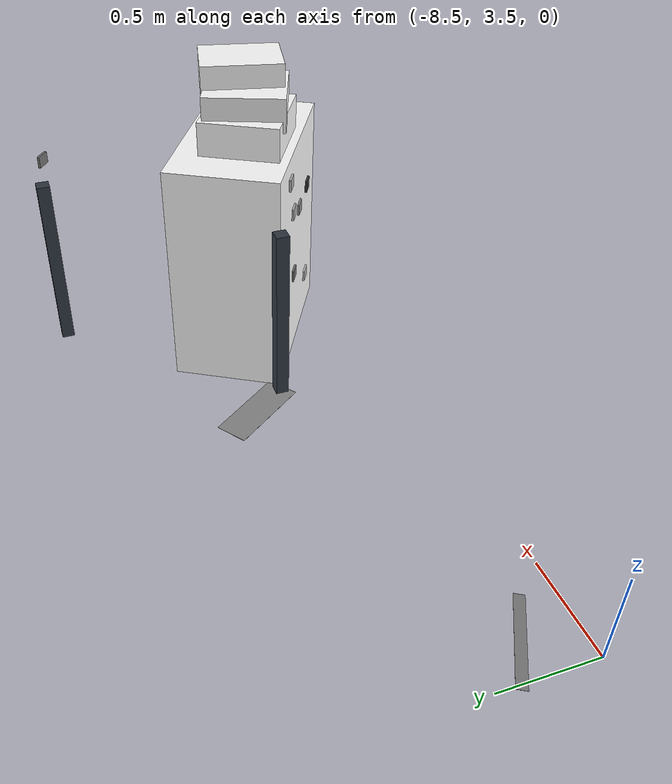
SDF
<sdf version="1.9">
 <world name="warehouse_irregular">
  <model name="concrete_patch_137">
   <static>true</static>
   <pose>-6.617455423422713 4.371536349869171 0.0006 0 0 -0.9474743150604317</pose>
   <link name="body">
    <visual name="surface">
     <geometry><box><size>0.4725333834413474 0.17494251966283283 0.001</size></box></geometry>
     <material>
      <ambient>0.524759388889908 0.524759388889908 0.524759388889908 1</ambient>
      <diffuse>0.524759388889908 0.524759388889908 0.524759388889908 1</diffuse>
     </material>
    </visual>
   </link>
  </model>
  <model name="concrete_patch_177">
   <static>true</static>
   <pose>-5.77723592558409 4.469726148606565 0.0006 0 0 0.8258014679860444</pose>
   <link name="body">
    <visual name="surface">
     <geometry><box><size>0.2825670112457129 0.161299946888635 0.001</size></box></geometry>
     <material>
      <ambient>0.5292002003037873 0.5292002003037873 0.5292002003037873 1</ambient>
      <diffuse>0.5292002003037873 0.5292002003037873 0.5292002003037873 1</diffuse>
     </material>
    </visual>
   </link>
  </model>
  <model name="concrete_patch_214">
   <static>true</static>
   <pose>-8.319689366881114 3.7755373463310598 0.0006 0 0 -0.516862153651604</pose>
   <link name="body">
    <visual name="surface">
     <geometry><box><size>0.4597193447306423 0.05258201737274962 0.001</size></box></geometry>
     <material>
      <ambient>0.4786931742407897 0.4786931742407897 0.4786931742407897 1</ambient>
      <diffuse>0.4786931742407897 0.4786931742407897 0.4786931742407897 1</diffuse>
     </material>
    </visual>
   </link>
  </model>
  <model name="panel_15_4_-1">
   <static>true</static>
   <pose>-5.438177042636795 5.217227586772431 1.0733444303970017 0 0 -0.6431714918098094</pose>
   <link name="body">
    <visual name="surface">
     <geometry><box><size>0.08 0.012 0.065</size></box></geometry>
     <material>
      <ambient>0.45648260429960896 0.45648260429960896 0.45648260429960896 1</ambient>
      <diffuse>0.45648260429960896 0.45648260429960896 0.45648260429960896 1</diffuse>
     </material>
    </visual>
   </link>
  </model>
  <model name="post_15_-1">
   <static>true</static>
   <pose>-5.590123425371991 5.247584168427819 0.5 0 0 0</pose>
   <link name="body">
    <visual name="surface">
     <geometry><box><size>0.07 0.07 1</size></box></geometry>
     <material><ambient>0.18 0.21 0.25 1</ambient><diffuse>0.18 0.21 0.25 1</diffuse></material>
    </visual>
    <collision name="solid"><geometry><box><size>0.07 0.07 1</size></box></geometry></collision>
   </link>
  </model>
  <model name="cabinet_17">
   <static>true</static>
   <pose>-5.873696568734362 4.198600738095938 0.6283083651654534 0 0 -0.5222800066137746</pose>
   <link name="body">
    <visual name="surface">
     <geometry><box><size>1 0.6 1.2566167303309068</size></box></geometry>
     <material>
      <ambient>1 1 1 1</ambient>
      <diffuse>1 1 1 1</diffuse>
      <pbr>
       <metal>
        <albedo_map>model://feature_warehouse_materials/textures/storage_17.png</albedo_map>
        <roughness>.9</roughness>
        <metalness>0</metalness>
       </metal>
      </pbr>
     </material>
    </visual>
    <collision name="solid"><geometry><box><size>1 0.6 1.2566167303309068</size></box></geometry></collision>
   </link>
  </model>
  <model name="panel_17_0_-1">
   <static>true</static>
   <pose>-6.2290220228476105 4.051207645693579 1.1258619134853676 0 0 -0.5222800066137746</pose>
   <link name="body">
    <visual name="surface">
     <geometry><box><size>0.08 0.012 0.065</size></box></geometry>
     <material>
      <ambient>0.7021941779531543 0.7021941779531543 0.7021941779531543 1</ambient>
      <diffuse>0.7021941779531543 0.7021941779531543 0.7021941779531543 1</diffuse>
     </material>
    </visual>
   </link>
  </model>
  <model name="panel_17_0_1">
   <static>true</static>
   <pose>-5.924718961206075 4.579884907050249 1.1258619134853676 0 0 -0.5222800066137746</pose>
   <link name="body">
    <visual name="surface">
     <geometry><box><size>0.08 0.012 0.065</size></box></geometry>
     <material>
      <ambient>0.16012290563334522 0.16012290563334522 0.16012290563334522 1</ambient>
      <diffuse>0.16012290563334522 0.16012290563334522 0.16012290563334522 1</diffuse>
     </material>
    </visual>
   </link>
  </model>
  <model name="panel_17_1_-1">
   <static>true</static>
   <pose>-6.134930279722982 3.99704907372372 0.5064201164577695 0 0 -0.5222800066137746</pose>
   <link name="body">
    <visual name="surface">
     <geometry><box><size>0.08 0.012 0.065</size></box></geometry>
     <material>
      <ambient>0.44250332741352183 0.44250332741352183 0.44250332741352183 1</ambient>
      <diffuse>0.44250332741352183 0.44250332741352183 0.44250332741352183 1</diffuse>
     </material>
    </visual>
   </link>
  </model>
  <model name="panel_17_1_1">
   <static>true</static>
   <pose>-5.830627218081447 4.525726335080389 0.5064201164577695 0 0 -0.5222800066137746</pose>
   <link name="body">
    <visual name="surface">
     <geometry><box><size>0.08 0.012 0.065</size></box></geometry>
     <material>
      <ambient>0.4489566689597154 0.4489566689597154 0.4489566689597154 1</ambient>
      <diffuse>0.4489566689597154 0.4489566689597154 0.4489566689597154 1</diffuse>
     </material>
    </visual>
   </link>
  </model>
  <model name="panel_17_2_-1">
   <static>true</static>
   <pose>-6.001487396263196 3.9202402511031225 0.8441301748225173 0 0 -0.5222800066137746</pose>
   <link name="body">
    <visual name="surface">
     <geometry><box><size>0.08 0.012 0.065</size></box></geometry>
     <material>
      <ambient>0.5446942353792508 0.5446942353792508 0.5446942353792508 1</ambient>
      <diffuse>0.5446942353792508 0.5446942353792508 0.5446942353792508 1</diffuse>
     </material>
    </visual>
   </link>
  </model>
  <model name="panel_17_2_1">
   <static>true</static>
   <pose>-5.69718433462166 4.448917512459792 0.8441301748225173 0 0 -0.5222800066137746</pose>
   <link name="body">
    <visual name="surface">
     <geometry><box><size>0.08 0.012 0.065</size></box></geometry>
     <material>
      <ambient>0.761670178417748 0.761670178417748 0.761670178417748 1</ambient>
      <diffuse>0.761670178417748 0.761670178417748 0.761670178417748 1</diffuse>
     </material>
    </visual>
   </link>
  </model>
  <model name="panel_17_4_-1">
   <static>true</static>
   <pose>-6.154832418133764 4.008504610199931 0.9088223925742754 0 0 -0.5222800066137746</pose>
   <link name="body">
    <visual name="surface">
     <geometry><box><size>0.08 0.012 0.065</size></box></geometry>
     <material>
      <ambient>0.6877107929136894 0.6877107929136894 0.6877107929136894 1</ambient>
      <diffuse>0.6877107929136894 0.6877107929136894 0.6877107929136894 1</diffuse>
     </material>
    </visual>
   </link>
  </model>
  <model name="panel_17_4_1">
   <static>true</static>
   <pose>-5.8505293564922285 4.5371818715566 0.9088223925742754 0 0 -0.5222800066137746</pose>
   <link name="body">
    <visual name="surface">
     <geometry><box><size>0.08 0.012 0.065</size></box></geometry>
     <material>
      <ambient>0.5877613611881717 0.5877613611881717 0.5877613611881717 1</ambient>
      <diffuse>0.5877613611881717 0.5877613611881717 0.5877613611881717 1</diffuse>
     </material>
    </visual>
   </link>
  </model>
  <model name="panel_17_5_-1">
   <static>true</static>
   <pose>-5.789664756560624 3.7983165700636277 0.8597971596784622 0 0 -0.5222800066137746</pose>
   <link name="body">
    <visual name="surface">
     <geometry><box><size>0.08 0.012 0.065</size></box></geometry>
     <material>
      <ambient>0.21627397207526927 0.21627397207526927 0.21627397207526927 1</ambient>
      <diffuse>0.21627397207526927 0.21627397207526927 0.21627397207526927 1</diffuse>
     </material>
    </visual>
   </link>
  </model>
  <model name="panel_17_5_1">
   <static>true</static>
   <pose>-5.4853616949190895 4.326993831420297 0.8597971596784622 0 0 -0.5222800066137746</pose>
   <link name="body">
    <visual name="surface">
     <geometry><box><size>0.08 0.012 0.065</size></box></geometry>
     <material>
      <ambient>0.4576932598912643 0.4576932598912643 0.4576932598912643 1</ambient>
      <diffuse>0.4576932598912643 0.4576932598912643 0.4576932598912643 1</diffuse>
     </material>
    </visual>
   </link>
  </model>
  <model name="panel_17_6_-1">
   <static>true</static>
   <pose>-5.80759332193701 3.8086361312281736 0.2665847541913656 0 0 -0.5222800066137746</pose>
   <link name="body">
    <visual name="surface">
     <geometry><box><size>0.08 0.012 0.065</size></box></geometry>
     <material>
      <ambient>0.7554441041226441 0.7554441041226441 0.7554441041226441 1</ambient>
      <diffuse>0.7554441041226441 0.7554441041226441 0.7554441041226441 1</diffuse>
     </material>
    </visual>
   </link>
  </model>
  <model name="panel_17_6_1">
   <static>true</static>
   <pose>-5.503290260295476 4.337313392584843 0.2665847541913656 0 0 -0.5222800066137746</pose>
   <link name="body">
    <visual name="surface">
     <geometry><box><size>0.08 0.012 0.065</size></box></geometry>
     <material>
      <ambient>0.24421094246469177 0.24421094246469177 0.24421094246469177 1</ambient>
      <diffuse>0.24421094246469177 0.24421094246469177 0.24421094246469177 1</diffuse>
     </material>
    </visual>
   </link>
  </model>
  <model name="carton_17_0">
   <static>true</static>
   <pose>-5.969836317922318 4.198600738095938 1.356616730330907 0 0 -0.5222800066137746</pose>
   <link name="body">
    <visual name="surface">
     <geometry><box><size>0.45 0.42 0.18</size></box></geometry>
     <material>
      <ambient>1 1 1 1</ambient>
      <diffuse>1 1 1 1</diffuse>
      <pbr>
       <metal>
        <albedo_map>model://feature_warehouse_materials/textures/storage_17.png</albedo_map>
        <roughness>.9</roughness>
        <metalness>0</metalness>
       </metal>
      </pbr>
     </material>
    </visual>
    <collision name="solid"><geometry><box><size>0.45 0.42 0.18</size></box></geometry></collision>
   </link>
  </model>
  <model name="carton_17_1">
   <static>true</static>
   <pose>-5.948795293411529 4.198600738095938 1.4766167303309068 0 0 -0.3722800066137746</pose>
   <link name="body">
    <visual name="surface">
     <geometry><box><size>0.38 0.42 0.18</size></box></geometry>
     <material>
      <ambient>1 1 1 1</ambient>
      <diffuse>1 1 1 1</diffuse>
      <pbr>
       <metal>
        <albedo_map>model://feature_warehouse_materials/textures/storage_17.png</albedo_map>
        <roughness>.9</roughness>
        <metalness>0</metalness>
       </metal>
      </pbr>
     </material>
    </visual>
    <collision name="solid"><geometry><box><size>0.38 0.42 0.18</size></box></geometry></collision>
   </link>
  </model>
  <model name="carton_17_2">
   <static>true</static>
   <pose>-5.858708847768066 4.198600738095938 1.596616730330907 0 0 -0.22228000661377462</pose>
   <link name="body">
    <visual name="surface">
     <geometry><box><size>0.31 0.42 0.18</size></box></geometry>
     <material>
      <ambient>1 1 1 1</ambient>
      <diffuse>1 1 1 1</diffuse>
      <pbr>
       <metal>
        <albedo_map>model://feature_warehouse_materials/textures/storage_17.png</albedo_map>
        <roughness>.9</roughness>
        <metalness>0</metalness>
       </metal>
      </pbr>
     </material>
    </visual>
    <collision name="solid"><geometry><box><size>0.31 0.42 0.18</size></box></geometry></collision>
   </link>
  </model>
  <model name="post_17_-1">
   <static>true</static>
   <pose>-6.493696568734362 4.198600738095938 0.5 0 0 0</pose>
   <link name="body">
    <visual name="surface">
     <geometry><box><size>0.07 0.07 1</size></box></geometry>
     <material><ambient>0.18 0.21 0.25 1</ambient><diffuse>0.18 0.21 0.25 1</diffuse></material>
    </visual>
    <collision name="solid"><geometry><box><size>0.07 0.07 1</size></box></geometry></collision>
   </link>
  </model>
 </world>
</sdf>
